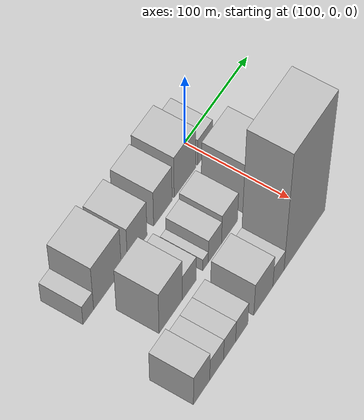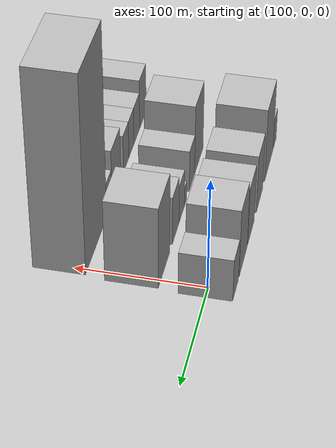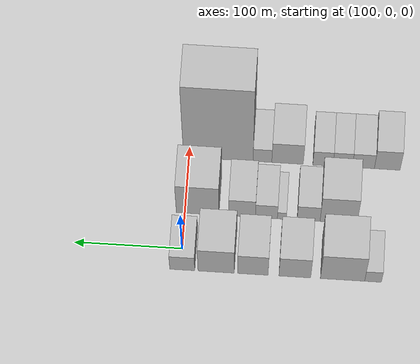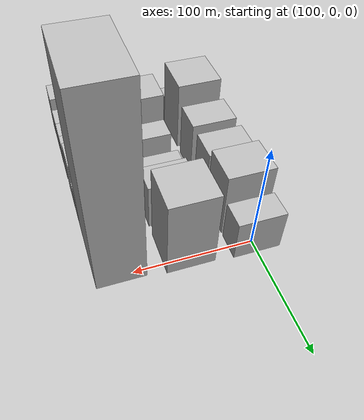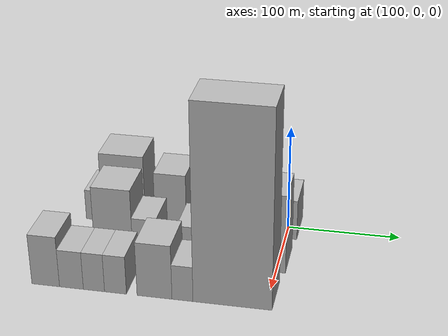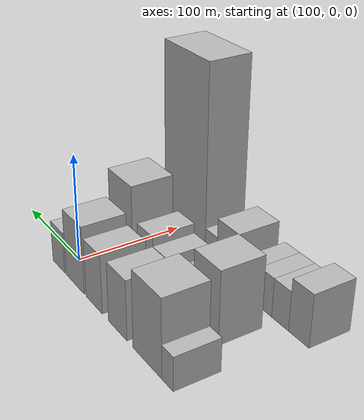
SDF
<sdf version="1.6">
 <world name="default">
  <model name="building_19">
   <static>1</static>
   <pose>100.0000 -176.7365 0 0.000000 0.000000 0.000000</pose>
   <link name="link">
    <pose>0 0 15.00 0 0 0</pose>
    <collision name="collision"><geometry><box><size>40.0000 15.3634 30.0000</size></box></geometry></collision>
    <visual name="visual">
     <cast_shadows>0</cast_shadows>
     <geometry><box><size>40.0000 15.3634 30.0000</size></box></geometry>
     <material>
      <script>
       <uri>model://HANNAS_wall/materials/scripts</uri>
       <uri>model://HANNAS_wall/materials/textures</uri>
       <name>vrc/HANNAS_wall</name>
      </script>
     </material>
    </visual>
   </link>
  </model>
  <model name="building_20">
   <static>1</static>
   <pose>100.0000 -148.7223 0 0.000000 0.000000 0.000000</pose>
   <link name="link">
    <pose>0 0 34.50 0 0 0</pose>
    <collision name="collision"><geometry><box><size>40.0000 40.6649 69.0000</size></box></geometry></collision>
    <visual name="visual">
     <cast_shadows>0</cast_shadows>
     <geometry><box><size>40.0000 40.6649 69.0000</size></box></geometry>
     <material>
      <script>
       <uri>model://HANNAS_wall/materials/scripts</uri>
       <uri>model://HANNAS_wall/materials/textures</uri>
       <name>vrc/HANNAS_wall</name>
      </script>
     </material>
    </visual>
   </link>
  </model>
  <model name="building_21">
   <static>1</static>
   <pose>100.0000 -104.7841 0 0.000000 0.000000 0.000000</pose>
   <link name="link">
    <pose>0 0 27.00 0 0 0</pose>
    <collision name="collision"><geometry><box><size>40.0000 29.2116 54.0000</size></box></geometry></collision>
    <visual name="visual">
     <cast_shadows>0</cast_shadows>
     <geometry><box><size>40.0000 29.2116 54.0000</size></box></geometry>
     <material>
      <script>
       <uri>model://HANNAS_wall/materials/scripts</uri>
       <uri>model://HANNAS_wall/materials/textures</uri>
       <name>vrc/HANNAS_wall</name>
      </script>
     </material>
    </visual>
   </link>
  </model>
  <model name="building_22">
   <static>1</static>
   <pose>100.0000 -66.1163 0 0.000000 0.000000 0.000000</pose>
   <link name="link">
    <pose>0 0 27.00 0 0 0</pose>
    <collision name="collision"><geometry><box><size>40.0000 28.1240 54.0000</size></box></geometry></collision>
    <visual name="visual">
     <cast_shadows>0</cast_shadows>
     <geometry><box><size>40.0000 28.1240 54.0000</size></box></geometry>
     <material>
      <script>
       <uri>model://HANNAS_wall/materials/scripts</uri>
       <uri>model://HANNAS_wall/materials/textures</uri>
       <name>vrc/HANNAS_wall</name>
      </script>
     </material>
    </visual>
   </link>
  </model>
  <model name="building_23">
   <static>1</static>
   <pose>100.0000 -32.3615 0 0.000000 0.000000 0.000000</pose>
   <link name="link">
    <pose>0 0 31.50 0 0 0</pose>
    <collision name="collision"><geometry><box><size>40.0000 33.3856 63.0000</size></box></geometry></collision>
    <visual name="visual">
     <cast_shadows>0</cast_shadows>
     <geometry><box><size>40.0000 33.3856 63.0000</size></box></geometry>
     <material>
      <script>
       <uri>model://HANNAS_wall/materials/scripts</uri>
       <uri>model://HANNAS_wall/materials/textures</uri>
       <name>vrc/HANNAS_wall</name>
      </script>
     </material>
    </visual>
   </link>
  </model>
  <model name="building_24">
   <static>1</static>
   <pose>100.0000 -1.1424 0 0.000000 0.000000 0.000000</pose>
   <link name="link">
    <pose>0 0 19.50 0 0 0</pose>
    <collision name="collision"><geometry><box><size>40.0000 23.0525 39.0000</size></box></geometry></collision>
    <visual name="visual">
     <cast_shadows>0</cast_shadows>
     <geometry><box><size>40.0000 23.0525 39.0000</size></box></geometry>
     <material>
      <script>
       <uri>model://HANNAS_wall/materials/scripts</uri>
       <uri>model://HANNAS_wall/materials/textures</uri>
       <name>vrc/HANNAS_wall</name>
      </script>
     </material>
    </visual>
   </link>
  </model>
  <model name="building_66">
   <static>1</static>
   <pose>155.0000 -142.3856 0 0.000000 0.000000 0.000000</pose>
   <link name="link">
    <pose>0 0 33.00 0 0 0</pose>
    <collision name="collision"><geometry><box><size>40.0000 34.3880 66.0000</size></box></geometry></collision>
    <visual name="visual">
     <cast_shadows>0</cast_shadows>
     <geometry><box><size>40.0000 34.3880 66.0000</size></box></geometry>
     <material>
      <script>
       <uri>model://HANNAS_wall/materials/scripts</uri>
       <uri>model://HANNAS_wall/materials/textures</uri>
       <name>vrc/HANNAS_wall</name>
      </script>
     </material>
    </visual>
   </link>
  </model>
  <model name="building_67">
   <static>1</static>
   <pose>155.0000 -114.5711 0 0.000000 0.000000 0.000000</pose>
   <link name="link">
    <pose>0 0 19.50 0 0 0</pose>
    <collision name="collision"><geometry><box><size>40.0000 21.2411 39.0000</size></box></geometry></collision>
    <visual name="visual">
     <cast_shadows>0</cast_shadows>
     <geometry><box><size>40.0000 21.2411 39.0000</size></box></geometry>
     <material>
      <script>
       <uri>model://HANNAS_wall/materials/scripts</uri>
       <uri>model://HANNAS_wall/materials/textures</uri>
       <name>vrc/HANNAS_wall</name>
      </script>
     </material>
    </visual>
   </link>
  </model>
  <model name="building_68">
   <static>1</static>
   <pose>155.0000 -89.7761 0 0.000000 0.000000 0.000000</pose>
   <link name="link">
    <pose>0 0 9.00 0 0 0</pose>
    <collision name="collision"><geometry><box><size>40.0000 8.3489 18.0000</size></box></geometry></collision>
    <visual name="visual">
     <cast_shadows>0</cast_shadows>
     <geometry><box><size>40.0000 8.3489 18.0000</size></box></geometry>
     <material>
      <script>
       <uri>model://HANNAS_wall/materials/scripts</uri>
       <uri>model://HANNAS_wall/materials/textures</uri>
       <name>vrc/HANNAS_wall</name>
      </script>
     </material>
    </visual>
   </link>
  </model>
  <model name="building_69">
   <static>1</static>
   <pose>155.0000 -75.3981 0 0.000000 0.000000 0.000000</pose>
   <link name="link">
    <pose>0 0 18.00 0 0 0</pose>
    <collision name="collision"><geometry><box><size>40.0000 20.4071 36.0000</size></box></geometry></collision>
    <visual name="visual">
     <cast_shadows>0</cast_shadows>
     <geometry><box><size>40.0000 20.4071 36.0000</size></box></geometry>
     <material>
      <script>
       <uri>model://HANNAS_wall/materials/scripts</uri>
       <uri>model://HANNAS_wall/materials/textures</uri>
       <name>vrc/HANNAS_wall</name>
      </script>
     </material>
    </visual>
   </link>
  </model>
  <model name="building_70">
   <static>1</static>
   <pose>155.0000 -52.7753 0 0.000000 0.000000 0.000000</pose>
   <link name="link">
    <pose>0 0 22.50 0 0 0</pose>
    <collision name="collision"><geometry><box><size>40.0000 24.8387 45.0000</size></box></geometry></collision>
    <visual name="visual">
     <cast_shadows>0</cast_shadows>
     <geometry><box><size>40.0000 24.8387 45.0000</size></box></geometry>
     <material>
      <script>
       <uri>model://HANNAS_wall/materials/scripts</uri>
       <uri>model://HANNAS_wall/materials/textures</uri>
       <name>vrc/HANNAS_wall</name>
      </script>
     </material>
    </visual>
   </link>
  </model>
  <model name="building_71">
   <static>1</static>
   <pose>155.0000 -11.5307 0 0.000000 0.000000 0.000000</pose>
   <link name="link">
    <pose>0 0 37.50 0 0 0</pose>
    <collision name="collision"><geometry><box><size>40.0000 39.6504 75.0000</size></box></geometry></collision>
    <visual name="visual">
     <cast_shadows>0</cast_shadows>
     <geometry><box><size>40.0000 39.6504 75.0000</size></box></geometry>
     <material>
      <script>
       <uri>model://HANNAS_wall/materials/scripts</uri>
       <uri>model://HANNAS_wall/materials/textures</uri>
       <name>vrc/HANNAS_wall</name>
      </script>
     </material>
    </visual>
   </link>
  </model>
  <model name="building_117">
   <static>1</static>
   <pose>210.0000 -185.2495 0 0.000000 0.000000 0.000000</pose>
   <link name="link">
    <pose>0 0 24.00 0 0 0</pose>
    <collision name="collision"><geometry><box><size>40.0000 24.0506 48.0000</size></box></geometry></collision>
    <visual name="visual">
     <cast_shadows>0</cast_shadows>
     <geometry><box><size>40.0000 24.0506 48.0000</size></box></geometry>
     <material>
      <script>
       <uri>model://HANNAS_wall/materials/scripts</uri>
       <uri>model://HANNAS_wall/materials/textures</uri>
       <name>vrc/HANNAS_wall</name>
      </script>
     </material>
    </visual>
   </link>
  </model>
  <model name="building_118">
   <static>1</static>
   <pose>210.0000 -162.8973 0 0.000000 0.000000 0.000000</pose>
   <link name="link">
    <pose>0 0 18.00 0 0 0</pose>
    <collision name="collision"><geometry><box><size>40.0000 20.6538 36.0000</size></box></geometry></collision>
    <visual name="visual">
     <cast_shadows>0</cast_shadows>
     <geometry><box><size>40.0000 20.6538 36.0000</size></box></geometry>
     <material>
      <script>
       <uri>model://HANNAS_wall/materials/scripts</uri>
       <uri>model://HANNAS_wall/materials/textures</uri>
       <name>vrc/HANNAS_wall</name>
      </script>
     </material>
    </visual>
   </link>
  </model>
  <model name="building_119">
   <static>1</static>
   <pose>210.0000 -143.4747 0 0.000000 0.000000 0.000000</pose>
   <link name="link">
    <pose>0 0 18.00 0 0 0</pose>
    <collision name="collision"><geometry><box><size>40.0000 18.1914 36.0000</size></box></geometry></collision>
    <visual name="visual">
     <cast_shadows>0</cast_shadows>
     <geometry><box><size>40.0000 18.1914 36.0000</size></box></geometry>
     <material>
      <script>
       <uri>model://HANNAS_wall/materials/scripts</uri>
       <uri>model://HANNAS_wall/materials/textures</uri>
       <name>vrc/HANNAS_wall</name>
      </script>
     </material>
    </visual>
   </link>
  </model>
  <model name="building_120">
   <static>1</static>
   <pose>210.0000 -125.0250 0 0.000000 0.000000 0.000000</pose>
   <link name="link">
    <pose>0 0 18.00 0 0 0</pose>
    <collision name="collision"><geometry><box><size>40.0000 18.7080 36.0000</size></box></geometry></collision>
    <visual name="visual">
     <cast_shadows>0</cast_shadows>
     <geometry><box><size>40.0000 18.7080 36.0000</size></box></geometry>
     <material>
      <script>
       <uri>model://HANNAS_wall/materials/scripts</uri>
       <uri>model://HANNAS_wall/materials/textures</uri>
       <name>vrc/HANNAS_wall</name>
      </script>
     </material>
    </visual>
   </link>
  </model>
  <model name="building_121">
   <static>1</static>
   <pose>210.0000 -91.9413 0 0.000000 0.000000 0.000000</pose>
   <link name="link">
    <pose>0 0 25.50 0 0 0</pose>
    <collision name="collision"><geometry><box><size>40.0000 29.4593 51.0000</size></box></geometry></collision>
    <visual name="visual">
     <cast_shadows>0</cast_shadows>
     <geometry><box><size>40.0000 29.4593 51.0000</size></box></geometry>
     <material>
      <script>
       <uri>model://HANNAS_wall/materials/scripts</uri>
       <uri>model://HANNAS_wall/materials/textures</uri>
       <name>vrc/HANNAS_wall</name>
      </script>
     </material>
    </visual>
   </link>
  </model>
  <model name="building_122">
   <static>1</static>
   <pose>210.0000 -68.4383 0 0.000000 0.000000 0.000000</pose>
   <link name="link">
    <pose>0 0 16.50 0 0 0</pose>
    <collision name="collision"><geometry><box><size>40.0000 17.5467 33.0000</size></box></geometry></collision>
    <visual name="visual">
     <cast_shadows>0</cast_shadows>
     <geometry><box><size>40.0000 17.5467 33.0000</size></box></geometry>
     <material>
      <script>
       <uri>model://HANNAS_wall/materials/scripts</uri>
       <uri>model://HANNAS_wall/materials/textures</uri>
       <name>vrc/HANNAS_wall</name>
      </script>
     </material>
    </visual>
   </link>
  </model>
  <model name="building_123">
   <static>1</static>
   <pose>210.0000 -27.0615 0 0.000000 0.000000 0.000000</pose>
   <link name="link">
    <pose>0 0 90.00 0 0 0</pose>
    <collision name="collision"><geometry><box><size>40.0000 65.2070 180.0000</size></box></geometry></collision>
    <visual name="visual">
     <cast_shadows>0</cast_shadows>
     <geometry><box><size>40.0000 65.2070 180.0000</size></box></geometry>
     <material>
      <script>
       <uri>model://HANNAS_wall/materials/scripts</uri>
       <uri>model://HANNAS_wall/materials/textures</uri>
       <name>vrc/HANNAS_wall</name>
      </script>
     </material>
    </visual>
   </link>
  </model>
 </world>
</sdf>
